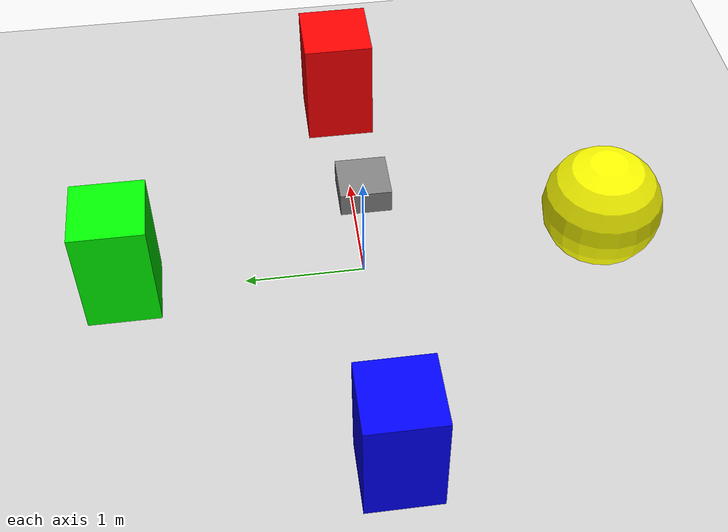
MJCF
<mujoco model="raycaster_test">
  <compiler angle="radian"/>

  <extension>
    <plugin plugin="mujoco.sensor.ray_caster"/>
  </extension>

  <visual>
    <headlight ambient="0.5 0.5 0.5"/>
  </visual>

  <worldbody>
    <light pos="0 0 3" dir="0 0 -1"/>
    <geom name="floor" type="plane" size="10 10 0.1" rgba="0.8 0.8 0.8 1"/>

    <!-- Some objects to detect -->
    <body name="box1" pos="2 0 0.5">
      <geom type="box" size="0.3 0.3 0.5" rgba="1 0 0 1"/>
    </body>

    <body name="box2" pos="0 2 0.5">
      <geom type="box" size="0.3 0.3 0.5" rgba="0 1 0 1"/>
    </body>

    <body name="box3" pos="-2 0 0.5">
      <geom type="box" size="0.3 0.3 0.5" rgba="0 0 1 1"/>
    </body>

    <body name="sphere1" pos="0 -2 0.5">
      <geom type="sphere" size="0.5" rgba="1 1 0 1"/>
    </body>

    <!-- Robot body with raycaster -->
    <body name="robot" pos="0 0 1">
      <freejoint/>
      <geom type="box" size="0.2 0.2 0.1" rgba="0.5 0.5 0.5 1"/>

      <!-- Camera for raycaster -->
      <camera name="depth_camera" pos="0 0 0" quat="1 0 0 0"/>
    </body>
  </worldbody>

  <sensor>
    <!-- RayCaster sensor -->
    <plugin name="raycaster_lidar" plugin="mujoco.sensor.ray_caster" objtype="camera" objname="depth_camera">
      <config key="resolution" value="0.1"/>
      <config key="size" value="1.57 0.785"/>
      <config key="dis_range" value="0.1 10"/>
      <config key="type" value="world"/>
      <config key="sensor_data_types" value="pos_w"/>
    </plugin>

    <!-- Position and orientation sensors for TF -->
    <framepos name="depth_camera_pos" objtype="camera" objname="depth_camera"/>
    <framequat name="depth_camera_quat" objtype="camera" objname="depth_camera"/>
  </sensor>
</mujoco>
